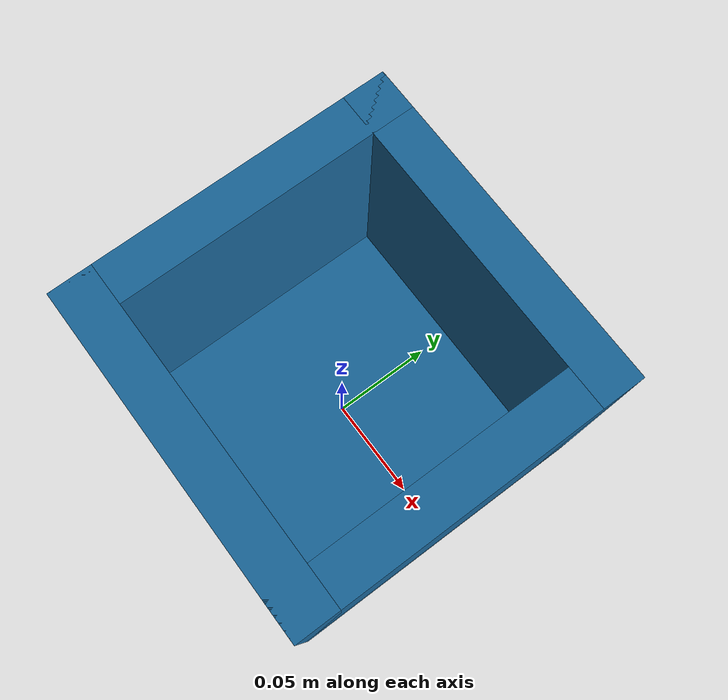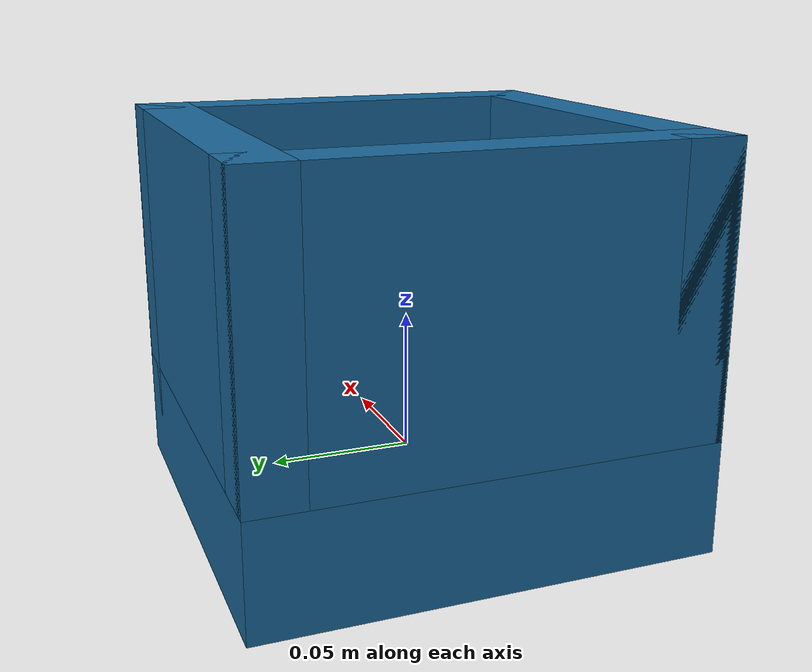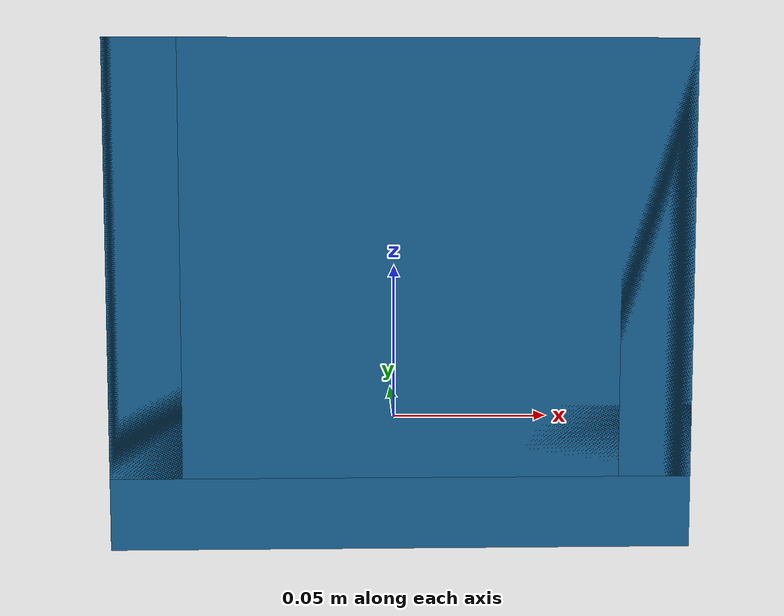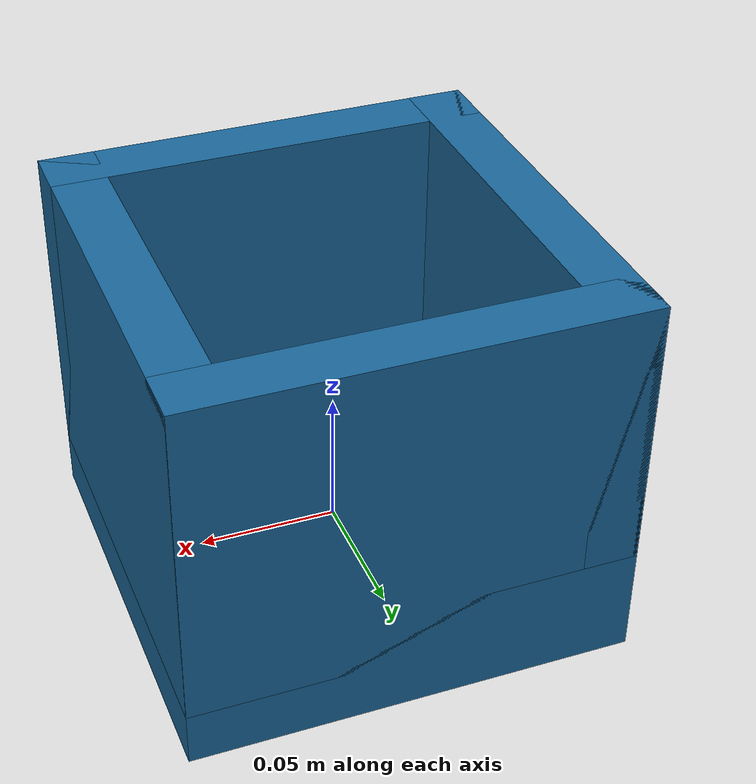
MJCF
<mujoco model="box">
    <option impratio="10" />
    <default>
        <default class="visual">
            <geom contype="0" conaffinity="0" group="2" />
        </default>
        <default class="collision">
            <geom group="3" condim="1" friction="0.1" priority="2" />
        </default>
    </default>
    <asset>
        <material name="blue" rgba="0.1 0.4 0.6 1" />
    </asset>
    <worldbody>
        <body name="box">
            <geom type="box" size="0.08 0.08 0.02" class="collision" />
            <geom type="box" size="0.08 0.08 0.02" class="visual" material="blue" />

            <geom type="box" size="0.08 0.01 0.06" pos="0.0 0.07 0.06" class="collision" />
            <geom type="box" size="0.08 0.01 0.06" pos="0.0 0.07 0.06" class="visual"
                material="blue" />

            <geom type="box" size="0.08 0.01 0.06" pos="0.0 -0.07 0.06" class="collision" />
            <geom type="box" size="0.08 0.01 0.06" pos="0.0 -0.07 0.06" class="visual"
                material="blue" />

            <geom type="box" size="0.01 0.08 0.06" pos="0.07 0.0 0.06" class="collision" />
            <geom type="box" size="0.01 0.08 0.06" pos="0.07 0.0 0.06" class="visual"
                material="blue" />

            <geom type="box" size="0.01 0.08 0.06" pos="-0.07 0.0 0.06" class="collision" />
            <geom type="box" size="0.01 0.08 0.06" pos="-0.07 0.0 0.06" class="visual"
                material="blue" />
        </body>
    </worldbody>
</mujoco>
